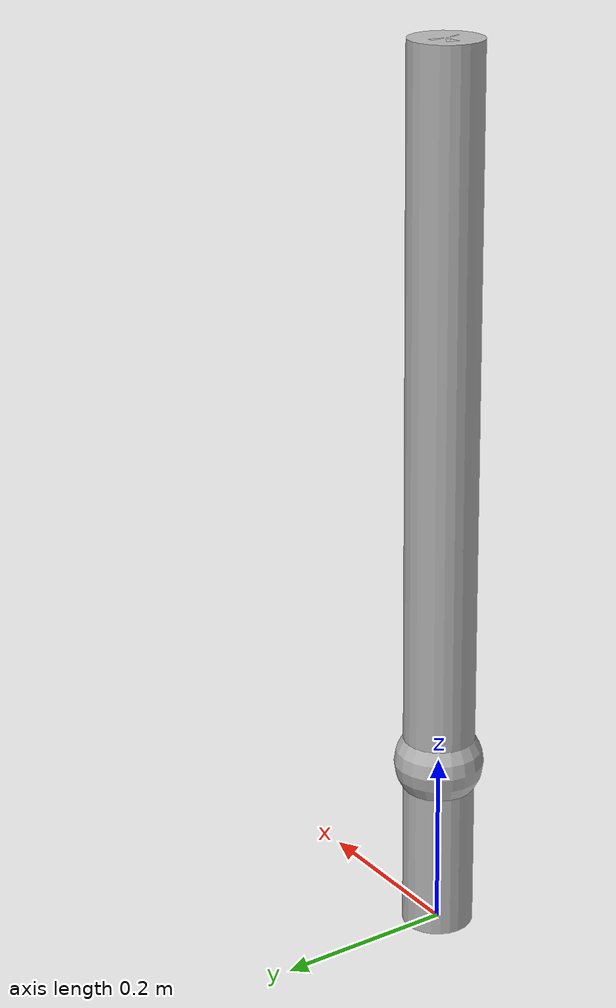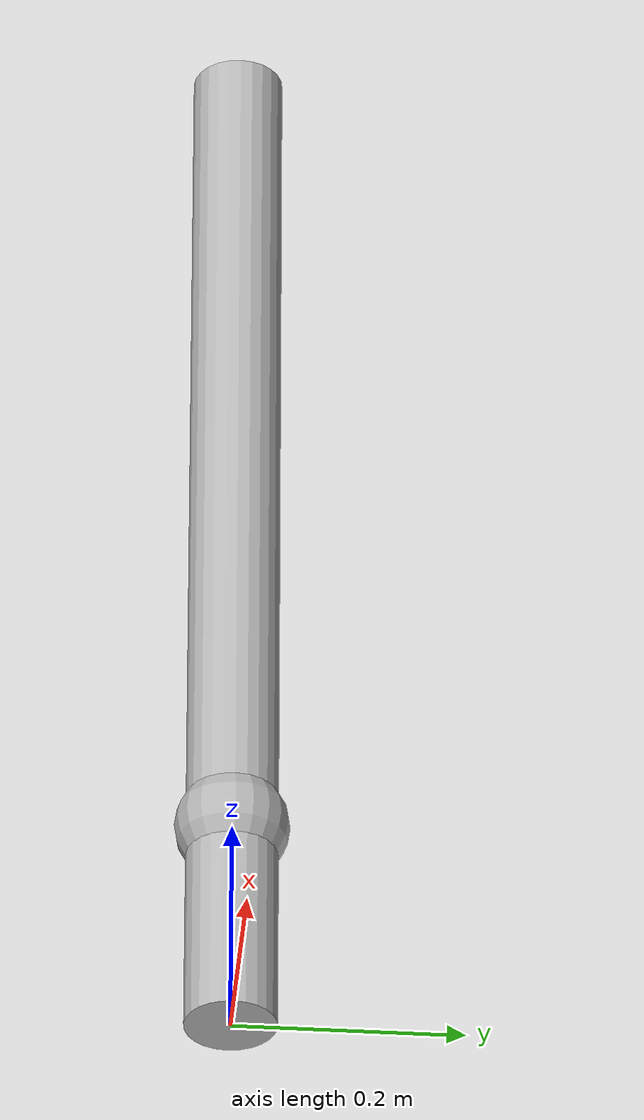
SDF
<?xml version='1.0' ?>

<!-- THIS FILE IS GENERATED FROM acrobot.rsdf -->

<sdf version='1.6'>
  <model name='Acrobot'>

    <link name='link1'>
      <pose>0 0 0.5 0 0 0</pose>
      <inertial>
        <mass>0.1</mass>
        <inertia>
          <ixx>0.03333333333333333</ixx>
          <iyy>0.03333333333333333</iyy>
          <izz>0</izz>
          <ixy>0</ixy><ixz>0</ixz><iyz>0</iyz>
        </inertia>
      </inertial>
      <visual name='link1_vis'>
        <pose>0 0 0 0 0 0</pose>
        <geometry>
          <cylinder>
            <radius>0.04</radius>
            <length>1</length>
          </cylinder>
        </geometry>
      </visual>
    </link>

    <link name='link2'>
      <pose>0 0 0.6 0 0 0</pose>
      <inertial>
        <mass>0.08</mass>
        <inertia>
          <ixx>0.017066666666666667</ixx>
          <iyy>0.017066666666666667</iyy>
          <izz>0</izz>
          <ixy>0</ixy><ixz>0</ixz><iyz>0</iyz>
        </inertia>
      </inertial>
      <visual name='link2_vis'>
        <pose>0 0 0 0 0 0</pose>
        <geometry>
          <cylinder>
            <radius>0.02</radius>
            <length>0.8</length>
          </cylinder>
        </geometry>
      </visual>
    </link>

    <link name='load'>
      <pose>0 0 0.19999999999999996 0 0 0</pose>
      <inertial>
        <inertia>
          <ixx>1.0e-20</ixx><iyy>1.0e-20</iyy><izz>1.0e-20</izz>
          <ixy>0</ixy><ixz>0</ixz><iyz>0</iyz>
        </inertia>
        <mass>0.5</mass>
      </inertial>
      <visual name='load_vis'>
        <pose>0 0 0 0 0 0</pose>
        <geometry>
          <sphere>
            <radius>0.05</radius>
          </sphere>
        </geometry>
      </visual>
    </link>

    <joint name='theta' type='revolute'>
      <parent>world</parent>
      <child>link1</child>
      <pose>0 0 -0.5 0 0 0</pose>
      <axis>
        <xyz>0 1.0 0</xyz>
        <limit>
          <effort>0.0</effort>
        </limit>
      </axis>
    </joint>

    <joint name='phi' type='revolute'>
      <parent>link1</parent>
      <child>link2</child>
      <pose>0 0 0.4 0 0 0</pose>
      <axis>
        <xyz>0 1.0 0</xyz>
      </axis>
    </joint>

    <joint name='load_attach' type='fixed'>
      <parent>link2</parent>
      <child>load</child>
      <pose>0 0 0 0 0 0</pose>
    </joint>

  </model>
</sdf>
